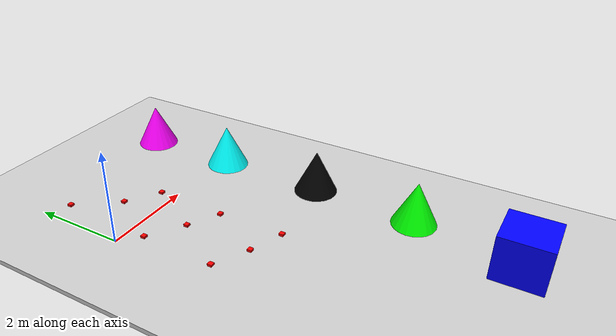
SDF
<sdf version='1.10'>
  <world name='robot_driver_world'>
    <physics name='1ms' type='ignored'>
      <max_step_size>0.001</max_step_size>
      <real_time_factor>1</real_time_factor>
      <real_time_update_rate>1000</real_time_update_rate>
    </physics>
    <plugin name='gz::sim::systems::Physics' filename='gz-sim-physics-system'/>
    <plugin name='gz::sim::systems::Sensors' filename='gz-sim-sensors-system'>
      <render_engine>ogre</render_engine>
    </plugin>
    <plugin name='gz::sim::systems::UserCommands' filename='gz-sim-user-commands-system'/>
    <plugin name='gz::sim::systems::SceneBroadcaster' filename='gz-sim-scene-broadcaster-system'/>
    <plugin name='gz::sim::systems::Contact' filename='gz-sim-contact-system'/>
    <gravity>0 0 -9.8000000000000007</gravity>
    <magnetic_field>5.5644999999999998e-06 2.2875799999999999e-05 -4.2388400000000002e-05</magnetic_field>
    <atmosphere type='adiabatic'/>
    <scene>
      <ambient>0.400000006 0.400000006 0.400000006 1</ambient>
      <background>0.699999988 0.699999988 0.699999988 1</background>
      <shadows>true</shadows>
    </scene>
    <model name='ground_plane'>
      <static>true</static>
      <link name='link'>
        <collision name='collision'>
          <geometry>
            <plane>
              <normal>0 0 1</normal>
              <size>100 100</size>
            </plane>
          </geometry>
          <surface>
            <friction>
              <ode/>
            </friction>
            <bounce/>
            <contact/>
          </surface>
        </collision>
        <visual name='visual'>
          <geometry>
            <plane>
              <normal>0 0 1</normal>
              <size>100 100</size>
            </plane>
          </geometry>
          <material>
            <ambient>0.800000012 0.800000012 0.800000012 1</ambient>
            <diffuse>0.800000012 0.800000012 0.800000012 1</diffuse>
            <specular>0.800000012 0.800000012 0.800000012 1</specular>
          </material>
        </visual>
        <pose>0 0 0 0 0 0</pose>
        <inertial>
          <pose>0 0 0 0 0 0</pose>
          <mass>1</mass>
          <inertia>
            <ixx>1</ixx>
            <ixy>0</ixy>
            <ixz>0</ixz>
            <iyy>1</iyy>
            <iyz>0</iyz>
            <izz>1</izz>
          </inertia>
        </inertial>
        <enable_wind>false</enable_wind>
      </link>
      <pose>0 0 0 0 0 0</pose>
      <self_collide>false</self_collide>
    </model>
    <model name='cone'>
      <pose>3.5084900856018066 -4.8863000869750968 0.50007998943328835 1.5065299587321439e-06 -1.636899968423854e-05 -6.2029800553207759e-07</pose>
      <link name='cone_link'>
        <inertial>
          <inertia>
            <ixx>0.074999999999999997</ixx>
            <ixy>0</ixy>
            <ixz>0</ixz>
            <iyy>0.074999999999999997</iyy>
            <iyz>0</iyz>
            <izz>0.074999999999999997</izz>
          </inertia>
          <mass>1</mass>
          <pose>0 0 0 0 0 0</pose>
        </inertial>
        <collision name='cone_collision'>
          <geometry>
            <cone>
              <radius>0.5</radius>
              <length>1</length>
            </cone>
          </geometry>
          <surface>
            <friction>
              <ode/>
            </friction>
            <bounce/>
            <contact/>
          </surface>
        </collision>
        <visual name='cone_visual'>
          <geometry>
            <cone>
              <radius>0.5</radius>
              <length>1</length>
            </cone>
          </geometry>
          <material>
            <ambient>0 1 0 1</ambient>
            <diffuse>0 1 0 1</diffuse>
            <specular>1 1 1 1</specular>
          </material>
        </visual>
        <pose>0 0 0 0 0 0</pose>
        <enable_wind>false</enable_wind>
      </link>
      <static>false</static>
      <self_collide>false</self_collide>
    </model>
    <model name='box_0'>
      <pose>3.0250799655914307 -7.103431224822998 0.49616199731826782 6.8396199260892533e-19 -1.784369977462839e-19 -9.0752201588740355e-20</pose>
      <link name='box_link'>
        <inertial>
          <inertia>
            <ixx>0.16666</ixx>
            <ixy>0</ixy>
            <ixz>0</ixz>
            <iyy>0.16666</iyy>
            <iyz>0</iyz>
            <izz>0.16666</izz>
          </inertia>
          <mass>1</mass>
          <pose>0 0 0 0 0 0</pose>
        </inertial>
        <collision name='box_collision'>
          <geometry>
            <box>
              <size>1 1 1</size>
            </box>
          </geometry>
          <surface>
            <friction>
              <ode/>
            </friction>
            <bounce/>
            <contact/>
          </surface>
        </collision>
        <visual name='box_visual'>
          <geometry>
            <box>
              <size>1 1 1</size>
            </box>
          </geometry>
          <material>
            <ambient>0 0 1 1</ambient>
            <diffuse>0 0 1 1</diffuse>
            <specular>1 1 1 1</specular>
          </material>
        </visual>
        <pose>0 0 0 0 0 0</pose>
        <enable_wind>false</enable_wind>
      </link>
      <static>false</static>
      <self_collide>false</self_collide>
    </model>
    <model name='cone_1'>
      <pose>3.6618199348449703 1.9262722730636597 0.49999800324440002 1.2282500100848701e-11 -1.1096400158295009e-05 7.2934400063360099e-09</pose>
      <link name='cone_link'>
        <inertial>
          <inertia>
            <ixx>0.074999999999999997</ixx>
            <ixy>0</ixy>
            <ixz>0</ixz>
            <iyy>0.074999999999999997</iyy>
            <iyz>0</iyz>
            <izz>0.074999999999999997</izz>
          </inertia>
          <mass>1</mass>
          <pose>0 0 0 0 0 0</pose>
        </inertial>
        <collision name='cone_collision'>
          <geometry>
            <cone>
              <radius>0.5</radius>
              <length>1</length>
            </cone>
          </geometry>
          <surface>
            <friction>
              <ode/>
            </friction>
            <bounce/>
            <contact/>
          </surface>
        </collision>
        <visual name='cone_visual'>
          <geometry>
            <cone>
              <radius>0.5</radius>
              <length>1</length>
            </cone>
          </geometry>
          <material>
            <ambient>1 0 1 1</ambient>
            <diffuse>1 0 1 1</diffuse>
            <specular>1 1 1 1</specular>
          </material>
        </visual>
        <pose>0 0 0 0 0 0</pose>
        <enable_wind>false</enable_wind>
      </link>
      <static>false</static>
      <self_collide>false</self_collide>
    </model>
    <model name='cone_2'>
      <pose>3.6361923217773433 -2.5664587020874023 0.49999985098838806 2.9413502168548196e-07 -1.2823601078716922e-06 0.00039737702790333288</pose>
      <link name='cone_link'>
        <inertial>
          <inertia>
            <ixx>0.074999999999999997</ixx>
            <ixy>0</ixy>
            <ixz>0</ixz>
            <iyy>0.074999999999999997</iyy>
            <iyz>0</iyz>
            <izz>0.074999999999999997</izz>
          </inertia>
          <mass>1</mass>
          <pose>0 0 0 0 0 0</pose>
        </inertial>
        <collision name='cone_collision'>
          <geometry>
            <cone>
              <radius>0.5</radius>
              <length>1</length>
            </cone>
          </geometry>
          <surface>
            <friction>
              <ode/>
            </friction>
            <bounce/>
            <contact/>
          </surface>
        </collision>
        <visual name='cone_visual'>
          <geometry>
            <cone>
              <radius>0.5</radius>
              <length>1</length>
            </cone>
          </geometry>
          <material>
            <ambient>0 0 0 1</ambient>
            <diffuse>0 0 0 1</diffuse>
            <specular>1 1 1 1</specular>
          </material>
        </visual>
        <pose>0 0 0 0 0 0</pose>
        <enable_wind>false</enable_wind>
      </link>
      <static>false</static>
      <self_collide>false</self_collide>
    </model>
    <model name='cone_3'>
      <pose>3.6360399723052979 -0.2170737236738205 0.49999979138374329 4.6287199357060178e-07 -2.0394199677252063e-06 -1.2406700326614776e-07</pose>
      <link name='cone_link'>
        <inertial>
          <inertia>
            <ixx>0.074999999999999997</ixx>
            <ixy>0</ixy>
            <ixz>0</ixz>
            <iyy>0.074999999999999997</iyy>
            <iyz>0</iyz>
            <izz>0.074999999999999997</izz>
          </inertia>
          <mass>1</mass>
          <pose>0 0 0 0 0 0</pose>
        </inertial>
        <collision name='cone_collision'>
          <geometry>
            <cone>
              <radius>0.5</radius>
              <length>1</length>
            </cone>
          </geometry>
          <surface>
            <friction>
              <ode/>
            </friction>
            <bounce/>
            <contact/>
          </surface>
        </collision>
        <visual name='cone_visual'>
          <geometry>
            <cone>
              <radius>0.5</radius>
              <length>1</length>
            </cone>
          </geometry>
          <material>
            <ambient>0 1 1 1</ambient>
            <diffuse>0 1 1 1</diffuse>
            <specular>1 1 1 1</specular>
          </material>
        </visual>
        <pose>0 0 0 0 0 0</pose>
        <enable_wind>false</enable_wind>
      </link>
      <static>false</static>
      <self_collide>false</self_collide>
    </model>
    <model name='obstacle_1'>
      <pose>1.0488699674606323 -2.4860496520996094 0.049999900162220001 3.9156699469856512e-18 7.7465497452815544e-18 3.7198800053824108e-20</pose>
      <link name='box_link'>
        <inertial>
          <inertia>
            <ixx>0.16666</ixx>
            <ixy>0</ixy>
            <ixz>0</ixz>
            <iyy>0.16666</iyy>
            <iyz>0</iyz>
            <izz>0.16666</izz>
          </inertia>
          <mass>1</mass>
          <pose>0 0 0 0 0 0</pose>
        </inertial>
        <collision name='obstacle_1_collision'>
          <geometry>
            <box>
              <size>0.10000000000000001 0.10000000000000001 0.10000000000000001</size>
            </box>
          </geometry>
          <surface>
            <friction>
              <ode/>
            </friction>
            <bounce/>
            <contact/>
          </surface>
        </collision>
        <visual name='obstacle_1_visual'>
          <geometry>
            <box>
              <size>0.10000000000000001 0.10000000000000001 0.10000000000000001</size>
            </box>
          </geometry>
          <material>
            <ambient>1 0 0 1</ambient>
            <diffuse>1 0 0 1</diffuse>
            <specular>1 1 1 1</specular>
          </material>
        </visual>
        <pose>0 0 0 0 0 0</pose>
        <enable_wind>false</enable_wind>
      </link>
      <static>false</static>
      <self_collide>false</self_collide>
    </model>
    <model name='ground_plane_1'>
      <static>true</static>
      <link name='link'>
        <collision name='collision'>
          <geometry>
            <plane>
              <normal>0 0 1</normal>
              <size>100 100</size>
            </plane>
          </geometry>
          <surface>
            <friction>
              <ode/>
            </friction>
            <bounce/>
            <contact/>
          </surface>
        </collision>
        <visual name='visual'>
          <geometry>
            <plane>
              <normal>0 0 1</normal>
              <size>100 100</size>
            </plane>
          </geometry>
          <material>
            <ambient>0.800000012 0.800000012 0.800000012 1</ambient>
            <diffuse>0.800000012 0.800000012 0.800000012 1</diffuse>
            <specular>0.800000012 0.800000012 0.800000012 1</specular>
          </material>
        </visual>
        <pose>0 0 0 0 0 0</pose>
        <inertial>
          <pose>0 0 0 0 0 0</pose>
          <mass>1</mass>
          <inertia>
            <ixx>1</ixx>
            <ixy>0</ixy>
            <ixz>0</ixz>
            <iyy>1</iyy>
            <iyz>0</iyz>
            <izz>1</izz>
          </inertia>
        </inertial>
        <enable_wind>false</enable_wind>
      </link>
      <pose>-0.51322870379034136 -3.231236988363309 0 0 0 0</pose>
      <self_collide>false</self_collide>
    </model>
    <model name='obstacle_1_1'>
      <pose>0.30450239777565002 -2.0890100002288818 0.049999900162220001 3.9402401063106201e-18 7.6927002874043523e-18 3.7160901610837255e-20</pose>
      <link name='box_link'>
        <inertial>
          <inertia>
            <ixx>0.16666</ixx>
            <ixy>0</ixy>
            <ixz>0</ixz>
            <iyy>0.16666</iyy>
            <iyz>0</iyz>
            <izz>0.16666</izz>
          </inertia>
          <mass>1</mass>
          <pose>0 0 0 0 0 0</pose>
        </inertial>
        <collision name='obstacle_1_collision'>
          <geometry>
            <box>
              <size>0.10000000000000001 0.10000000000000001 0.10000000000000001</size>
            </box>
          </geometry>
          <surface>
            <friction>
              <ode/>
            </friction>
            <bounce/>
            <contact/>
          </surface>
        </collision>
        <visual name='obstacle_1_visual'>
          <geometry>
            <box>
              <size>0.10000000000000001 0.10000000000000001 0.10000000000000001</size>
            </box>
          </geometry>
          <material>
            <ambient>1 0 0 1</ambient>
            <diffuse>1 0 0 1</diffuse>
            <specular>1 1 1 1</specular>
          </material>
        </visual>
        <pose>0 0 0 0 0 0</pose>
        <enable_wind>false</enable_wind>
      </link>
      <static>false</static>
      <self_collide>false</self_collide>
    </model>
    <model name='obstacle_1_2'>
      <pose>1.7968200445175171 -2.7600438594818115 0.049999900162220001 3.9402599586453214e-18 7.6943199070437311e-18 3.71722010272517e-20</pose>
      <link name='box_link'>
        <inertial>
          <inertia>
            <ixx>0.16666</ixx>
            <ixy>0</ixy>
            <ixz>0</ixz>
            <iyy>0.16666</iyy>
            <iyz>0</iyz>
            <izz>0.16666</izz>
          </inertia>
          <mass>1</mass>
          <pose>0 0 0 0 0 0</pose>
        </inertial>
        <collision name='obstacle_1_collision'>
          <geometry>
            <box>
              <size>0.10000000000000001 0.10000000000000001 0.10000000000000001</size>
            </box>
          </geometry>
          <surface>
            <friction>
              <ode/>
            </friction>
            <bounce/>
            <contact/>
          </surface>
        </collision>
        <visual name='obstacle_1_visual'>
          <geometry>
            <box>
              <size>0.10000000000000001 0.10000000000000001 0.10000000000000001</size>
            </box>
          </geometry>
          <material>
            <ambient>1 0 0 1</ambient>
            <diffuse>1 0 0 1</diffuse>
            <specular>1 1 1 1</specular>
          </material>
        </visual>
        <pose>0 0 0 0 0 0</pose>
        <enable_wind>false</enable_wind>
      </link>
      <static>false</static>
      <self_collide>false</self_collide>
    </model>
    <model name='obstacle_1_4'>
      <pose>1.0895800590515137 -0.93555700778961182 0.049999900162220001 3.9396201344415116e-18 7.7009299073186424e-18 3.7178799085106517e-20</pose>
      <link name='box_link'>
        <inertial>
          <inertia>
            <ixx>0.16666</ixx>
            <ixy>0</ixy>
            <ixz>0</ixz>
            <iyy>0.16666</iyy>
            <iyz>0</iyz>
            <izz>0.16666</izz>
          </inertia>
          <mass>1</mass>
          <pose>0 0 0 0 0 0</pose>
        </inertial>
        <collision name='obstacle_1_collision'>
          <geometry>
            <box>
              <size>0.10000000000000001 0.10000000000000001 0.10000000000000001</size>
            </box>
          </geometry>
          <surface>
            <friction>
              <ode/>
            </friction>
            <bounce/>
            <contact/>
          </surface>
        </collision>
        <visual name='obstacle_1_visual'>
          <geometry>
            <box>
              <size>0.10000000000000001 0.10000000000000001 0.10000000000000001</size>
            </box>
          </geometry>
          <material>
            <ambient>1 0 0 1</ambient>
            <diffuse>1 0 0 1</diffuse>
            <specular>1 1 1 1</specular>
          </material>
        </visual>
        <pose>0 0 0 0 0 0</pose>
        <enable_wind>false</enable_wind>
      </link>
      <static>false</static>
      <self_collide>false</self_collide>
    </model>
    <model name='obstacle_1_5'>
      <pose>0.34709501266479492 -0.44078299403190613 0.049999900162220001 3.9387499404371058e-18 7.6873798617044112e-18 3.717899941791112e-20</pose>
      <link name='box_link'>
        <inertial>
          <inertia>
            <ixx>0.16666</ixx>
            <ixy>0</ixy>
            <ixz>0</ixz>
            <iyy>0.16666</iyy>
            <iyz>0</iyz>
            <izz>0.16666</izz>
          </inertia>
          <mass>1</mass>
          <pose>0 0 0 0 0 0</pose>
        </inertial>
        <collision name='obstacle_1_collision'>
          <geometry>
            <box>
              <size>0.10000000000000001 0.10000000000000001 0.10000000000000001</size>
            </box>
          </geometry>
          <surface>
            <friction>
              <ode/>
            </friction>
            <bounce/>
            <contact/>
          </surface>
        </collision>
        <visual name='obstacle_1_visual'>
          <geometry>
            <box>
              <size>0.10000000000000001 0.10000000000000001 0.10000000000000001</size>
            </box>
          </geometry>
          <material>
            <ambient>1 0 0 1</ambient>
            <diffuse>1 0 0 1</diffuse>
            <specular>1 1 1 1</specular>
          </material>
        </visual>
        <pose>0 0 0 0 0 0</pose>
        <enable_wind>false</enable_wind>
      </link>
      <static>false</static>
      <self_collide>false</self_collide>
    </model>
    <model name='obstacle_1_6'>
      <pose>1.0996500253677368 0.760772705078125 0.049999900162220001 3.9388798077932766e-18 7.6870200381379506e-18 3.7183700776470748e-20</pose>
      <link name='box_link'>
        <inertial>
          <inertia>
            <ixx>0.16666</ixx>
            <ixy>0</ixy>
            <ixz>0</ixz>
            <iyy>0.16666</iyy>
            <iyz>0</iyz>
            <izz>0.16666</izz>
          </inertia>
          <mass>1</mass>
          <pose>0 0 0 0 0 0</pose>
        </inertial>
        <collision name='obstacle_1_collision'>
          <geometry>
            <box>
              <size>0.10000000000000001 0.10000000000000001 0.10000000000000001</size>
            </box>
          </geometry>
          <surface>
            <friction>
              <ode/>
            </friction>
            <bounce/>
            <contact/>
          </surface>
        </collision>
        <visual name='obstacle_1_visual'>
          <geometry>
            <box>
              <size>0.10000000000000001 0.10000000000000001 0.10000000000000001</size>
            </box>
          </geometry>
          <material>
            <ambient>1 0 0 1</ambient>
            <diffuse>1 0 0 1</diffuse>
            <specular>1 1 1 1</specular>
          </material>
        </visual>
        <pose>0 0 0 0 0 0</pose>
        <enable_wind>false</enable_wind>
      </link>
      <static>false</static>
      <self_collide>false</self_collide>
    </model>
    <model name='obstacle_1_7'>
      <pose>1.8049399852752686 0.29998359084129333 0.049999900162220001 3.9370798627803613e-18 7.7054802278682966e-18 3.7180899348380572e-20</pose>
      <link name='box_link'>
        <inertial>
          <inertia>
            <ixx>0.16666</ixx>
            <ixy>0</ixy>
            <ixz>0</ixz>
            <iyy>0.16666</iyy>
            <iyz>0</iyz>
            <izz>0.16666</izz>
          </inertia>
          <mass>1</mass>
          <pose>0 0 0 0 0 0</pose>
        </inertial>
        <collision name='obstacle_1_collision'>
          <geometry>
            <box>
              <size>0.10000000000000001 0.10000000000000001 0.10000000000000001</size>
            </box>
          </geometry>
          <surface>
            <friction>
              <ode/>
            </friction>
            <bounce/>
            <contact/>
          </surface>
        </collision>
        <visual name='obstacle_1_visual'>
          <geometry>
            <box>
              <size>0.10000000000000001 0.10000000000000001 0.10000000000000001</size>
            </box>
          </geometry>
          <material>
            <ambient>1 0 0 1</ambient>
            <diffuse>1 0 0 1</diffuse>
            <specular>1 1 1 1</specular>
          </material>
        </visual>
        <pose>0 0 0 0 0 0</pose>
        <enable_wind>false</enable_wind>
      </link>
      <static>false</static>
      <self_collide>false</self_collide>
    </model>
    <model name='obstacle_1_8'>
      <pose>1.7610900402069092 -1.2950215339660645 0.049999900162220001 3.939379838473565e-18 7.6900500007217324e-18 3.7144700503058586e-20</pose>
      <link name='box_link'>
        <inertial>
          <inertia>
            <ixx>0.16666</ixx>
            <ixy>0</ixy>
            <ixz>0</ixz>
            <iyy>0.16666</iyy>
            <iyz>0</iyz>
            <izz>0.16666</izz>
          </inertia>
          <mass>1</mass>
          <pose>0 0 0 0 0 0</pose>
        </inertial>
        <collision name='obstacle_1_collision'>
          <geometry>
            <box>
              <size>0.10000000000000001 0.10000000000000001 0.10000000000000001</size>
            </box>
          </geometry>
          <surface>
            <friction>
              <ode/>
            </friction>
            <bounce/>
            <contact/>
          </surface>
        </collision>
        <visual name='obstacle_1_visual'>
          <geometry>
            <box>
              <size>0.10000000000000001 0.10000000000000001 0.10000000000000001</size>
            </box>
          </geometry>
          <material>
            <ambient>1 0 0 1</ambient>
            <diffuse>1 0 0 1</diffuse>
            <specular>1 1 1 1</specular>
          </material>
        </visual>
        <pose>0 0 0 0 0 0</pose>
        <enable_wind>false</enable_wind>
      </link>
      <static>false</static>
      <self_collide>false</self_collide>
    </model>
    <model name='obstacle_1_3'>
      <pose>0.42512500286102295 1.654688835144043 0.049999900162220001 3.9117400118954118e-18 7.7347103091740829e-18 3.7218600689737096e-20</pose>
      <link name='box_link'>
        <inertial>
          <inertia>
            <ixx>0.16666</ixx>
            <ixy>0</ixy>
            <ixz>0</ixz>
            <iyy>0.16666</iyy>
            <iyz>0</iyz>
            <izz>0.16666</izz>
          </inertia>
          <mass>1</mass>
          <pose>0 0 0 0 0 0</pose>
        </inertial>
        <collision name='obstacle_1_collision'>
          <geometry>
            <box>
              <size>0.10000000000000001 0.10000000000000001 0.10000000000000001</size>
            </box>
          </geometry>
          <surface>
            <friction>
              <ode/>
            </friction>
            <bounce/>
            <contact/>
          </surface>
        </collision>
        <visual name='obstacle_1_visual'>
          <geometry>
            <box>
              <size>0.10000000000000001 0.10000000000000001 0.10000000000000001</size>
            </box>
          </geometry>
          <material>
            <ambient>1 0 0 1</ambient>
            <diffuse>1 0 0 1</diffuse>
            <specular>1 1 1 1</specular>
          </material>
        </visual>
        <pose>0 0 0 0 0 0</pose>
        <enable_wind>false</enable_wind>
      </link>
      <static>false</static>
      <self_collide>false</self_collide>
    </model>
    <light name='sun' type='directional'>
      <pose>0 0 10 0 0 0</pose>
      <cast_shadows>true</cast_shadows>
      <intensity>1</intensity>
      <direction>-0.5 0.10000000000000001 -0.90000000000000002</direction>
      <diffuse>0.800000012 0.800000012 0.800000012 1</diffuse>
      <specular>0.200000003 0.200000003 0.200000003 1</specular>
      <attenuation>
        <range>1000</range>
        <linear>0.0099999997764825821</linear>
        <constant>0.89999997615814209</constant>
        <quadratic>0.0010000000474974513</quadratic>
      </attenuation>
      <spot>
        <inner_angle>0</inner_angle>
        <outer_angle>0</outer_angle>
        <falloff>0</falloff>
      </spot>
    </light>
  </world>
</sdf>
